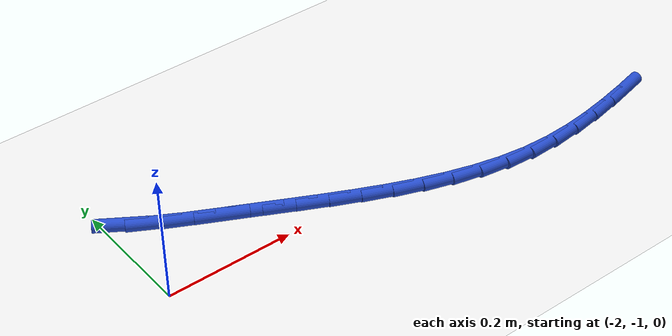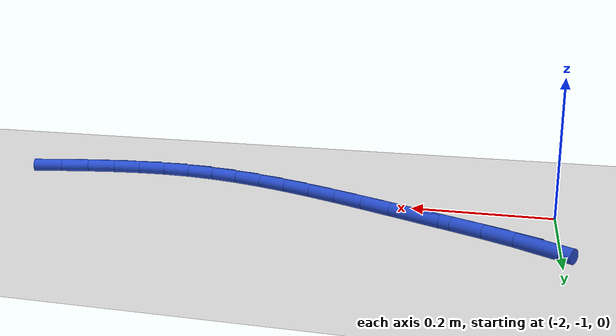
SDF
<sdf version="1.6">
 <world name="default">
  <model name="ground_plane">
   <static>1</static>
   <link name="link">
    <collision name="collision">
     <geometry><plane><normal>0 0 1</normal><size>100 100</size></plane></geometry>
     <surface><friction><ode><mu>100</mu><mu2>50</mu2></ode></friction></surface>
    </collision>
    <visual name="visual">
     <cast_shadows>0</cast_shadows>
     <geometry><plane><normal>0 0 1</normal><size>100 100</size></plane></geometry>
     <material>
      <script><uri>file://media/materials/scripts/gazebo.material</uri><name>Gazebo/WhiteGlow</name></script>
     </material>
    </visual>
   </link>
  </model>
  <model name="line">
   <link name="link_94">
    <pose>-1.9795115593122141 -0.8440404022525272 0.01 0 1.57 -0.5801881097216998</pose>
    <collision name="collision">
     <geometry><cylinder><radius>0.01</radius><length>0.08</length></cylinder></geometry>
    </collision>
    <visual name="visual">
     <material>
      <script><name>Gazebo/Blue</name><uri>file://media/materials/scripts/gazebo.material</uri></script>
     </material>
     <geometry><cylinder><radius>0.01</radius><length>0.08</length></cylinder></geometry>
    </visual>
   </link>
   <link name="link_95">
    <pose>-1.940673248570413 -0.8694964812153552 0.01 0 1.57 -0.5138191316384008</pose>
    <collision name="collision">
     <geometry><cylinder><radius>0.01</radius><length>0.08</length></cylinder></geometry>
    </collision>
    <visual name="visual">
     <material>
      <script><name>Gazebo/Blue</name><uri>file://media/materials/scripts/gazebo.material</uri></script>
     </material>
     <geometry><cylinder><radius>0.01</radius><length>0.08</length></cylinder></geometry>
    </visual>
   </link>
   <link name="link_96">
    <pose>-1.8990355784659174 -0.8929960970445827 0.01 0 1.57 -0.47785997398480323</pose>
    <collision name="collision">
     <geometry><cylinder><radius>0.01</radius><length>0.08</length></cylinder></geometry>
    </collision>
    <visual name="visual">
     <material>
      <script><name>Gazebo/Blue</name><uri>file://media/materials/scripts/gazebo.material</uri></script>
     </material>
     <geometry><cylinder><radius>0.01</radius><length>0.08</length></cylinder></geometry>
    </visual>
   </link>
   <link name="link_97">
    <pose>-1.8558056173535187 -0.9153846266475403 0.01 0 1.57 -0.46911303428842643</pose>
    <collision name="collision">
     <geometry><cylinder><radius>0.01</radius><length>0.08</length></cylinder></geometry>
    </collision>
    <visual name="visual">
     <material>
      <script><name>Gazebo/Blue</name><uri>file://media/materials/scripts/gazebo.material</uri></script>
     </material>
     <geometry><cylinder><radius>0.01</radius><length>0.08</length></cylinder></geometry>
    </visual>
   </link>
   <link name="link_98">
    <pose>-1.8121796110334112 -0.9374964928378228 0.01 0 1.57 -0.4725597588904915</pose>
    <collision name="collision">
     <geometry><cylinder><radius>0.01</radius><length>0.08</length></cylinder></geometry>
    </collision>
    <visual name="visual">
     <material>
      <script><name>Gazebo/Blue</name><uri>file://media/materials/scripts/gazebo.material</uri></script>
     </material>
     <geometry><cylinder><radius>0.01</radius><length>0.08</length></cylinder></geometry>
    </visual>
   </link>
   <link name="link_99">
    <pose>-1.7688434236938309 -0.9596495335537871 0.01 0 1.57 -0.4681478384910281</pose>
    <collision name="collision">
     <geometry><cylinder><radius>0.01</radius><length>0.08</length></cylinder></geometry>
    </collision>
    <visual name="visual">
     <material>
      <script><name>Gazebo/Blue</name><uri>file://media/materials/scripts/gazebo.material</uri></script>
     </material>
     <geometry><cylinder><radius>0.01</radius><length>0.08</length></cylinder></geometry>
    </visual>
   </link>
   <link name="link_100">
    <pose>-1.7257628129643305 -0.9814327278798175 0.01 0 1.57 -0.4541049977758552</pose>
    <collision name="collision">
     <geometry><cylinder><radius>0.01</radius><length>0.08</length></cylinder></geometry>
    </collision>
    <visual name="visual">
     <material>
      <script><name>Gazebo/Blue</name><uri>file://media/materials/scripts/gazebo.material</uri></script>
     </material>
     <geometry><cylinder><radius>0.01</radius><length>0.08</length></cylinder></geometry>
    </visual>
   </link>
   <link name="link_101">
    <pose>-1.6828492045425953 -1.002380062609063 0.01 0 1.57 -0.4300067054081999</pose>
    <collision name="collision">
     <geometry><cylinder><radius>0.01</radius><length>0.08</length></cylinder></geometry>
    </collision>
    <visual name="visual">
     <material>
      <script><name>Gazebo/Blue</name><uri>file://media/materials/scripts/gazebo.material</uri></script>
     </material>
     <geometry><cylinder><radius>0.01</radius><length>0.08</length></cylinder></geometry>
    </visual>
   </link>
   <link name="link_102">
    <pose>-1.6400140241263066 -1.0220255245346732 0.01 0 1.57 -0.39529528102123923</pose>
    <collision name="collision">
     <geometry><cylinder><radius>0.01</radius><length>0.08</length></cylinder></geometry>
    </collision>
    <visual name="visual">
     <material>
      <script><name>Gazebo/Blue</name><uri>file://media/materials/scripts/gazebo.material</uri></script>
     </material>
     <geometry><cylinder><radius>0.01</radius><length>0.08</length></cylinder></geometry>
    </visual>
   </link>
   <link name="link_103">
    <pose>-1.597168697413148 -1.0399031004497967 0.01 0 1.57 -0.3493397467291555</pose>
    <collision name="collision">
     <geometry><cylinder><radius>0.01</radius><length>0.08</length></cylinder></geometry>
    </collision>
    <visual name="visual">
     <material>
      <script><name>Gazebo/Blue</name><uri>file://media/materials/scripts/gazebo.material</uri></script>
     </material>
     <geometry><cylinder><radius>0.01</radius><length>0.08</length></cylinder></geometry>
    </visual>
   </link>
   <link name="link_104">
    <pose>-1.5542246501008052 -1.055546777147583 0.01 0 1.57 -0.2915495661137677</pose>
    <collision name="collision">
     <geometry><cylinder><radius>0.01</radius><length>0.08</length></cylinder></geometry>
    </collision>
    <visual name="visual">
     <material>
      <script><name>Gazebo/Blue</name><uri>file://media/materials/scripts/gazebo.material</uri></script>
     </material>
     <geometry><cylinder><radius>0.01</radius><length>0.08</length></cylinder></geometry>
    </visual>
   </link>
   <link name="link_105">
    <pose>-1.5110933078869588 -1.0684905414211812 0.01 0 1.57 -0.22156036990270353</pose>
    <collision name="collision">
     <geometry><cylinder><radius>0.01</radius><length>0.08</length></cylinder></geometry>
    </collision>
    <visual name="visual">
     <material>
      <script><name>Gazebo/Blue</name><uri>file://media/materials/scripts/gazebo.material</uri></script>
     </material>
     <geometry><cylinder><radius>0.01</radius><length>0.08</length></cylinder></geometry>
    </visual>
   </link>
   <link name="link_106">
    <pose>-1.467686096469295 -1.0782683800637398 0.01 0 1.57 -0.1394962838820452</pose>
    <collision name="collision">
     <geometry><cylinder><radius>0.01</radius><length>0.08</length></cylinder></geometry>
    </collision>
    <visual name="visual">
     <material>
      <script><name>Gazebo/Blue</name><uri>file://media/materials/scripts/gazebo.material</uri></script>
     </material>
     <geometry><cylinder><radius>0.01</radius><length>0.08</length></cylinder></geometry>
    </visual>
   </link>
   <link name="link_107">
    <pose>-1.4239144415454943 -1.0844142798684084 0.01 0 1.57 -0.047982382411923256</pose>
    <collision name="collision">
     <geometry><cylinder><radius>0.01</radius><length>0.08</length></cylinder></geometry>
    </collision>
    <visual name="visual">
     <material>
      <script><name>Gazebo/Blue</name><uri>file://media/materials/scripts/gazebo.material</uri></script>
     </material>
     <geometry><cylinder><radius>0.01</radius><length>0.08</length></cylinder></geometry>
    </visual>
   </link>
   <link name="link_108">
    <pose>-1.3796992854121382 -1.086537458052646 0.01 0 1.57 0.03691582118571652</pose>
    <collision name="collision">
     <geometry><cylinder><radius>0.01</radius><length>0.08</length></cylinder></geometry>
    </collision>
    <visual name="visual">
     <material>
      <script><name>Gazebo/Blue</name><uri>file://media/materials/scripts/gazebo.material</uri></script>
     </material>
     <geometry><cylinder><radius>0.01</radius><length>0.08</length></cylinder></geometry>
    </visual>
   </link>
   <link name="link_109">
    <pose>-1.3350426616292999 -1.084888172843126 0.01 0 1.57 0.10717086606253012</pose>
    <collision name="collision">
     <geometry><cylinder><radius>0.01</radius><length>0.08</length></cylinder></geometry>
    </collision>
    <visual name="visual">
     <material>
      <script><name>Gazebo/Blue</name><uri>file://media/materials/scripts/gazebo.material</uri></script>
     </material>
     <geometry><cylinder><radius>0.01</radius><length>0.08</length></cylinder></geometry>
    </visual>
   </link>
   <link name="link_110">
    <pose>-1.2899876315478813 -1.0800410145253145 0.01 0 1.57 0.1629963666673662</pose>
    <collision name="collision">
     <geometry><cylinder><radius>0.01</radius><length>0.08</length></cylinder></geometry>
    </collision>
    <visual name="visual">
     <material>
      <script><name>Gazebo/Blue</name><uri>file://media/materials/scripts/gazebo.material</uri></script>
     </material>
     <geometry><cylinder><radius>0.01</radius><length>0.08</length></cylinder></geometry>
    </visual>
   </link>
   <link name="link_111">
    <pose>-1.2445775745249223 -1.0725730872803203 0.01 0 1.57 0.205106873739757</pose>
    <collision name="collision">
     <geometry><cylinder><radius>0.01</radius><length>0.08</length></cylinder></geometry>
    </collision>
    <visual name="visual">
     <material>
      <script><name>Gazebo/Blue</name><uri>file://media/materials/scripts/gazebo.material</uri></script>
     </material>
     <geometry><cylinder><radius>0.01</radius><length>0.08</length></cylinder></geometry>
    </visual>
   </link>
   <link name="link_112">
    <pose>-1.1988558699174614 -1.0630614952892536 0.01 0 1.57 0.23432253906581577</pose>
    <collision name="collision">
     <geometry><cylinder><radius>0.01</radius><length>0.08</length></cylinder></geometry>
    </collision>
    <visual name="visual">
     <material>
      <script><name>Gazebo/Blue</name><uri>file://media/materials/scripts/gazebo.material</uri></script>
     </material>
     <geometry><cylinder><radius>0.01</radius><length>0.08</length></cylinder></geometry>
    </visual>
   </link>
  </model>
 </world>
</sdf>
